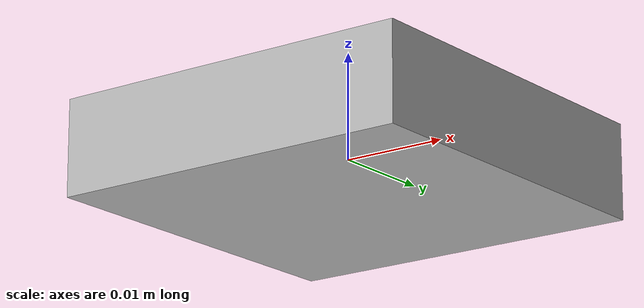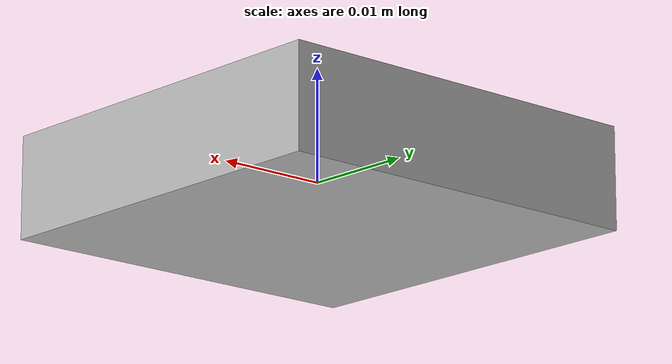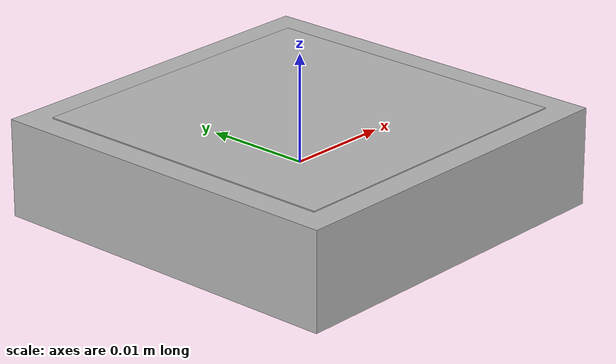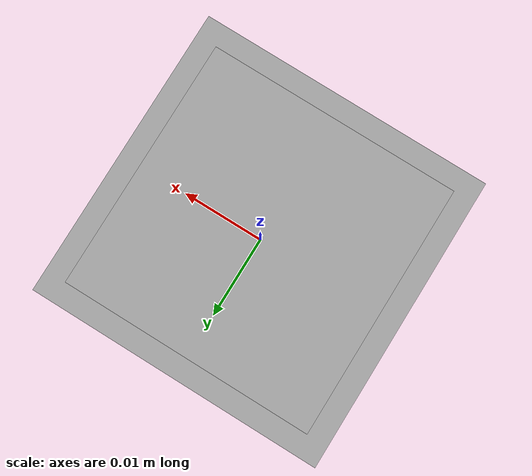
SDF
<?xml version="1.0" ?>
<sdf version="1.5">
  <model name="rei_imaging_sensor_marker">
    <static>false</static>
    <link name="link">
      <inertial>
        <mass>0.1</mass>
        <inertia>
          <ixx>0.00003</ixx>
          <ixy>0</ixy>
          <ixz>0</ixz>
          <iyy>0.00003</iyy>
          <iyz>0</iyz>
          <izz>0.00003</izz>
        </inertia>
      </inertial>
      <collision name="collision">
        <geometry>
          <box>
            <size>0.035 0.035 0.01</size>
          </box>
        </geometry>
				<surface>
					<friction>
						<ode>
							<mu>1</mu>
							<mu2>1</mu2>
						</ode>
					</friction>
				</surface>
      </collision>
      <visual name="visual_1">
        <pose>0 0 0.0 0 0 0</pose>
        <cast_shadows>false</cast_shadows>
        <geometry>
          <box>
            <size>0.035 0.035 0.009</size>
          </box>
        </geometry>
      </visual>
      <visual name="visual_2">
        <pose>0 0 0.0041 0 0 0</pose>
        <cast_shadows>false</cast_shadows>
        <geometry>
          <box>
            <size>0.03 0.03 0.001</size>
          </box>
        </geometry>
        <material>
          <script>
            <uri>model://rei_2025raicom/imaging_sensor_marker/materials/scripts</uri>
            <uri>model://rei_2025raicom/imaging_sensor_marker/materials/textures</uri>
            <name>reinovo/imaging_sensor_marker</name>
          </script>
        </material>
      </visual>
    </link>
  </model>
</sdf>
